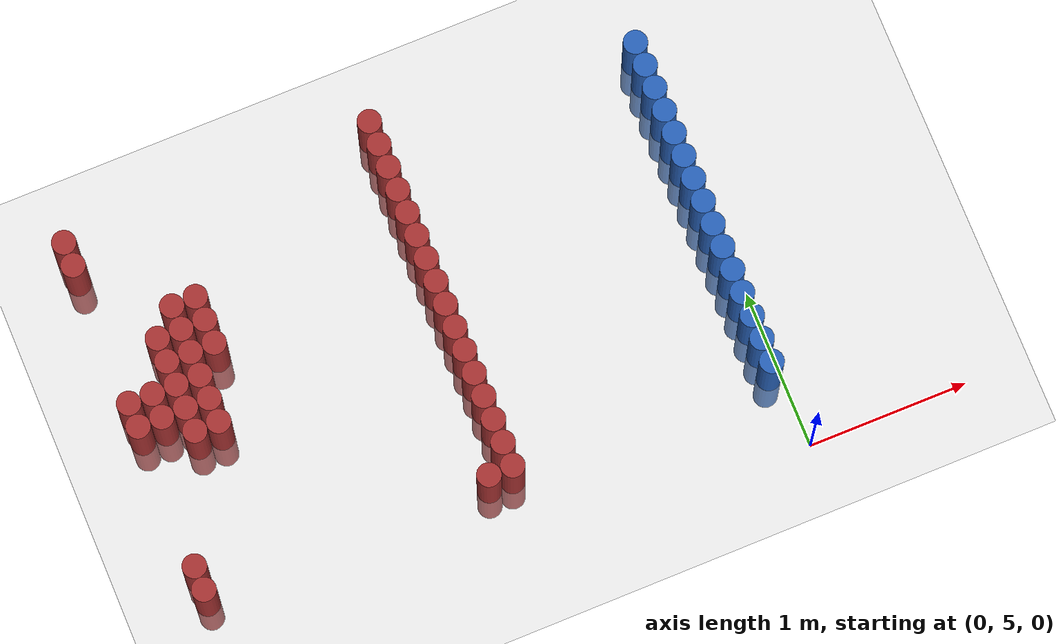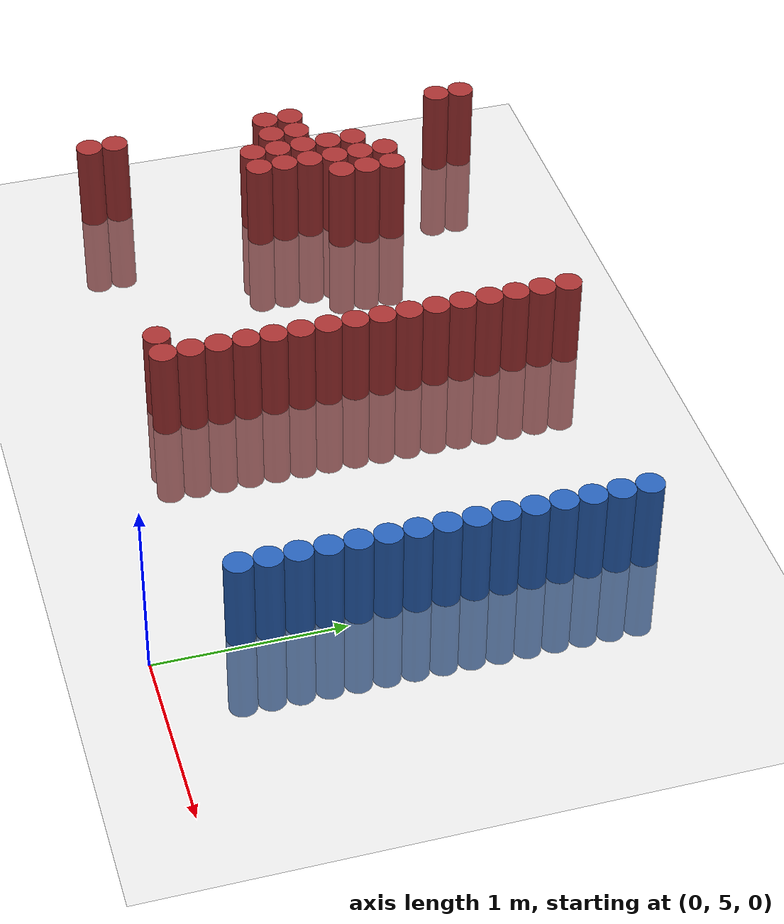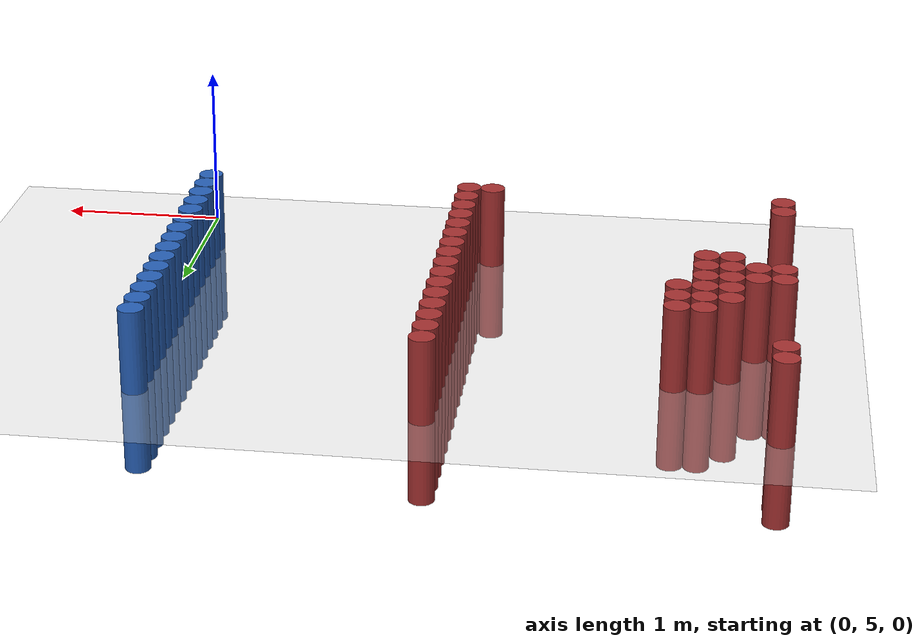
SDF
<sdf version="1.6">
 <world name="default">
  <model name="ground_plane">
   <static>1</static>
   <link name="link">
    <collision name="collision">
     <geometry><plane><normal>0 0 1</normal><size>100 100</size></plane></geometry>
     <surface><friction><ode><mu>100</mu><mu2>50</mu2></ode></friction></surface>
    </collision>
    <visual name="visual">
     <cast_shadows>0</cast_shadows>
     <geometry><plane><normal>0 0 1</normal><size>100 100</size></plane></geometry>
     <material>
      <script><uri>file://media/materials/scripts/gazebo.material</uri><name>Gazebo/Grey</name></script>
     </material>
    </visual>
   </link>
  </model>
  <model name="unit_cylinder_261">
   <static>1</static>
   <pose>-3.675000 5.475000 0.000000 0.000000 0.000000 0.000000</pose>
   <link name="link">
    <inertial>
     <mass>1</mass>
     <inertia><ixx>0.145833</ixx><ixy>0</ixy><ixz>0</ixz><iyy>0.145833</iyy><iyz>0</iyz><izz>0.125</izz></inertia>
    </inertial>
    <collision name="collision">
     <geometry><cylinder><radius>0.075000</radius><length>1</length></cylinder></geometry>
    </collision>
    <visual name="visual">
     <geometry><cylinder><radius>0.075000</radius><length>1</length></cylinder></geometry>
     <material>
      <ambient>0.648000 0.192000 0.192000 1</ambient>
      <diffuse>0.648000 0.192000 0.192000 1</diffuse>
     </material>
     <material>
      <script><name>Gazebo/Grey</name><uri>file://media/materials/scripts/gazebo.material</uri></script>
     </material>
    </visual>
   </link>
  </model>
  <model name="unit_cylinder_262">
   <static>1</static>
   <pose>-3.675000 5.625000 0.000000 0.000000 0.000000 0.000000</pose>
   <link name="link">
    <inertial>
     <mass>1</mass>
     <inertia><ixx>0.145833</ixx><ixy>0</ixy><ixz>0</ixz><iyy>0.145833</iyy><iyz>0</iyz><izz>0.125</izz></inertia>
    </inertial>
    <collision name="collision">
     <geometry><cylinder><radius>0.075000</radius><length>1</length></cylinder></geometry>
    </collision>
    <visual name="visual">
     <geometry><cylinder><radius>0.075000</radius><length>1</length></cylinder></geometry>
     <material>
      <ambient>0.648000 0.192000 0.192000 1</ambient>
      <diffuse>0.648000 0.192000 0.192000 1</diffuse>
     </material>
     <material>
      <script><name>Gazebo/Grey</name><uri>file://media/materials/scripts/gazebo.material</uri></script>
     </material>
    </visual>
   </link>
  </model>
  <model name="unit_cylinder_263">
   <static>1</static>
   <pose>-3.675000 6.525000 0.000000 0.000000 0.000000 0.000000</pose>
   <link name="link">
    <inertial>
     <mass>1</mass>
     <inertia><ixx>0.145833</ixx><ixy>0</ixy><ixz>0</ixz><iyy>0.145833</iyy><iyz>0</iyz><izz>0.125</izz></inertia>
    </inertial>
    <collision name="collision">
     <geometry><cylinder><radius>0.075000</radius><length>1</length></cylinder></geometry>
    </collision>
    <visual name="visual">
     <geometry><cylinder><radius>0.075000</radius><length>1</length></cylinder></geometry>
     <material>
      <ambient>0.648000 0.192000 0.192000 1</ambient>
      <diffuse>0.648000 0.192000 0.192000 1</diffuse>
     </material>
     <material>
      <script><name>Gazebo/Grey</name><uri>file://media/materials/scripts/gazebo.material</uri></script>
     </material>
    </visual>
   </link>
  </model>
  <model name="unit_cylinder_264">
   <static>1</static>
   <pose>-3.675000 6.675000 0.000000 0.000000 0.000000 0.000000</pose>
   <link name="link">
    <inertial>
     <mass>1</mass>
     <inertia><ixx>0.145833</ixx><ixy>0</ixy><ixz>0</ixz><iyy>0.145833</iyy><iyz>0</iyz><izz>0.125</izz></inertia>
    </inertial>
    <collision name="collision">
     <geometry><cylinder><radius>0.075000</radius><length>1</length></cylinder></geometry>
    </collision>
    <visual name="visual">
     <geometry><cylinder><radius>0.075000</radius><length>1</length></cylinder></geometry>
     <material>
      <ambient>0.648000 0.192000 0.192000 1</ambient>
      <diffuse>0.648000 0.192000 0.192000 1</diffuse>
     </material>
     <material>
      <script><name>Gazebo/Grey</name><uri>file://media/materials/scripts/gazebo.material</uri></script>
     </material>
    </visual>
   </link>
  </model>
  <model name="unit_cylinder_265">
   <static>1</static>
   <pose>-3.675000 7.575000 0.000000 0.000000 0.000000 0.000000</pose>
   <link name="link">
    <inertial>
     <mass>1</mass>
     <inertia><ixx>0.145833</ixx><ixy>0</ixy><ixz>0</ixz><iyy>0.145833</iyy><iyz>0</iyz><izz>0.125</izz></inertia>
    </inertial>
    <collision name="collision">
     <geometry><cylinder><radius>0.075000</radius><length>1</length></cylinder></geometry>
    </collision>
    <visual name="visual">
     <geometry><cylinder><radius>0.075000</radius><length>1</length></cylinder></geometry>
     <material>
      <ambient>0.648000 0.192000 0.192000 1</ambient>
      <diffuse>0.648000 0.192000 0.192000 1</diffuse>
     </material>
     <material>
      <script><name>Gazebo/Grey</name><uri>file://media/materials/scripts/gazebo.material</uri></script>
     </material>
    </visual>
   </link>
  </model>
  <model name="unit_cylinder_266">
   <static>1</static>
   <pose>-3.675000 7.725000 0.000000 0.000000 0.000000 0.000000</pose>
   <link name="link">
    <inertial>
     <mass>1</mass>
     <inertia><ixx>0.145833</ixx><ixy>0</ixy><ixz>0</ixz><iyy>0.145833</iyy><iyz>0</iyz><izz>0.125</izz></inertia>
    </inertial>
    <collision name="collision">
     <geometry><cylinder><radius>0.075000</radius><length>1</length></cylinder></geometry>
    </collision>
    <visual name="visual">
     <geometry><cylinder><radius>0.075000</radius><length>1</length></cylinder></geometry>
     <material>
      <ambient>0.648000 0.192000 0.192000 1</ambient>
      <diffuse>0.648000 0.192000 0.192000 1</diffuse>
     </material>
     <material>
      <script><name>Gazebo/Grey</name><uri>file://media/materials/scripts/gazebo.material</uri></script>
     </material>
    </visual>
   </link>
  </model>
  <model name="unit_cylinder_271">
   <static>1</static>
   <pose>-3.525000 6.525000 0.000000 0.000000 0.000000 0.000000</pose>
   <link name="link">
    <inertial>
     <mass>1</mass>
     <inertia><ixx>0.145833</ixx><ixy>0</ixy><ixz>0</ixz><iyy>0.145833</iyy><iyz>0</iyz><izz>0.125</izz></inertia>
    </inertial>
    <collision name="collision">
     <geometry><cylinder><radius>0.075000</radius><length>1</length></cylinder></geometry>
    </collision>
    <visual name="visual">
     <geometry><cylinder><radius>0.075000</radius><length>1</length></cylinder></geometry>
     <material>
      <ambient>0.648000 0.192000 0.192000 1</ambient>
      <diffuse>0.648000 0.192000 0.192000 1</diffuse>
     </material>
     <material>
      <script><name>Gazebo/Grey</name><uri>file://media/materials/scripts/gazebo.material</uri></script>
     </material>
    </visual>
   </link>
  </model>
  <model name="unit_cylinder_272">
   <static>1</static>
   <pose>-3.525000 6.675000 0.000000 0.000000 0.000000 0.000000</pose>
   <link name="link">
    <inertial>
     <mass>1</mass>
     <inertia><ixx>0.145833</ixx><ixy>0</ixy><ixz>0</ixz><iyy>0.145833</iyy><iyz>0</iyz><izz>0.125</izz></inertia>
    </inertial>
    <collision name="collision">
     <geometry><cylinder><radius>0.075000</radius><length>1</length></cylinder></geometry>
    </collision>
    <visual name="visual">
     <geometry><cylinder><radius>0.075000</radius><length>1</length></cylinder></geometry>
     <material>
      <ambient>0.648000 0.192000 0.192000 1</ambient>
      <diffuse>0.648000 0.192000 0.192000 1</diffuse>
     </material>
     <material>
      <script><name>Gazebo/Grey</name><uri>file://media/materials/scripts/gazebo.material</uri></script>
     </material>
    </visual>
   </link>
  </model>
  <model name="unit_cylinder_278">
   <static>1</static>
   <pose>-3.375000 6.375000 0.000000 0.000000 0.000000 0.000000</pose>
   <link name="link">
    <inertial>
     <mass>1</mass>
     <inertia><ixx>0.145833</ixx><ixy>0</ixy><ixz>0</ixz><iyy>0.145833</iyy><iyz>0</iyz><izz>0.125</izz></inertia>
    </inertial>
    <collision name="collision">
     <geometry><cylinder><radius>0.075000</radius><length>1</length></cylinder></geometry>
    </collision>
    <visual name="visual">
     <geometry><cylinder><radius>0.075000</radius><length>1</length></cylinder></geometry>
     <material>
      <ambient>0.648000 0.192000 0.192000 1</ambient>
      <diffuse>0.648000 0.192000 0.192000 1</diffuse>
     </material>
     <material>
      <script><name>Gazebo/Grey</name><uri>file://media/materials/scripts/gazebo.material</uri></script>
     </material>
    </visual>
   </link>
  </model>
  <model name="unit_cylinder_279">
   <static>1</static>
   <pose>-3.375000 6.525000 0.000000 0.000000 0.000000 0.000000</pose>
   <link name="link">
    <inertial>
     <mass>1</mass>
     <inertia><ixx>0.145833</ixx><ixy>0</ixy><ixz>0</ixz><iyy>0.145833</iyy><iyz>0</iyz><izz>0.125</izz></inertia>
    </inertial>
    <collision name="collision">
     <geometry><cylinder><radius>0.075000</radius><length>1</length></cylinder></geometry>
    </collision>
    <visual name="visual">
     <geometry><cylinder><radius>0.075000</radius><length>1</length></cylinder></geometry>
     <material>
      <ambient>0.648000 0.192000 0.192000 1</ambient>
      <diffuse>0.648000 0.192000 0.192000 1</diffuse>
     </material>
     <material>
      <script><name>Gazebo/Grey</name><uri>file://media/materials/scripts/gazebo.material</uri></script>
     </material>
    </visual>
   </link>
  </model>
  <model name="unit_cylinder_280">
   <static>1</static>
   <pose>-3.375000 6.675000 0.000000 0.000000 0.000000 0.000000</pose>
   <link name="link">
    <inertial>
     <mass>1</mass>
     <inertia><ixx>0.145833</ixx><ixy>0</ixy><ixz>0</ixz><iyy>0.145833</iyy><iyz>0</iyz><izz>0.125</izz></inertia>
    </inertial>
    <collision name="collision">
     <geometry><cylinder><radius>0.075000</radius><length>1</length></cylinder></geometry>
    </collision>
    <visual name="visual">
     <geometry><cylinder><radius>0.075000</radius><length>1</length></cylinder></geometry>
     <material>
      <ambient>0.648000 0.192000 0.192000 1</ambient>
      <diffuse>0.648000 0.192000 0.192000 1</diffuse>
     </material>
     <material>
      <script><name>Gazebo/Grey</name><uri>file://media/materials/scripts/gazebo.material</uri></script>
     </material>
    </visual>
   </link>
  </model>
  <model name="unit_cylinder_281">
   <static>1</static>
   <pose>-3.375000 6.825000 0.000000 0.000000 0.000000 0.000000</pose>
   <link name="link">
    <inertial>
     <mass>1</mass>
     <inertia><ixx>0.145833</ixx><ixy>0</ixy><ixz>0</ixz><iyy>0.145833</iyy><iyz>0</iyz><izz>0.125</izz></inertia>
    </inertial>
    <collision name="collision">
     <geometry><cylinder><radius>0.075000</radius><length>1</length></cylinder></geometry>
    </collision>
    <visual name="visual">
     <geometry><cylinder><radius>0.075000</radius><length>1</length></cylinder></geometry>
     <material>
      <ambient>0.648000 0.192000 0.192000 1</ambient>
      <diffuse>0.648000 0.192000 0.192000 1</diffuse>
     </material>
     <material>
      <script><name>Gazebo/Grey</name><uri>file://media/materials/scripts/gazebo.material</uri></script>
     </material>
    </visual>
   </link>
  </model>
  <model name="unit_cylinder_282">
   <static>1</static>
   <pose>-3.375000 6.975000 0.000000 0.000000 0.000000 0.000000</pose>
   <link name="link">
    <inertial>
     <mass>1</mass>
     <inertia><ixx>0.145833</ixx><ixy>0</ixy><ixz>0</ixz><iyy>0.145833</iyy><iyz>0</iyz><izz>0.125</izz></inertia>
    </inertial>
    <collision name="collision">
     <geometry><cylinder><radius>0.075000</radius><length>1</length></cylinder></geometry>
    </collision>
    <visual name="visual">
     <geometry><cylinder><radius>0.075000</radius><length>1</length></cylinder></geometry>
     <material>
      <ambient>0.648000 0.192000 0.192000 1</ambient>
      <diffuse>0.648000 0.192000 0.192000 1</diffuse>
     </material>
     <material>
      <script><name>Gazebo/Grey</name><uri>file://media/materials/scripts/gazebo.material</uri></script>
     </material>
    </visual>
   </link>
  </model>
  <model name="unit_cylinder_287">
   <static>1</static>
   <pose>-3.225000 6.375000 0.000000 0.000000 0.000000 0.000000</pose>
   <link name="link">
    <inertial>
     <mass>1</mass>
     <inertia><ixx>0.145833</ixx><ixy>0</ixy><ixz>0</ixz><iyy>0.145833</iyy><iyz>0</iyz><izz>0.125</izz></inertia>
    </inertial>
    <collision name="collision">
     <geometry><cylinder><radius>0.075000</radius><length>1</length></cylinder></geometry>
    </collision>
    <visual name="visual">
     <geometry><cylinder><radius>0.075000</radius><length>1</length></cylinder></geometry>
     <material>
      <ambient>0.648000 0.192000 0.192000 1</ambient>
      <diffuse>0.648000 0.192000 0.192000 1</diffuse>
     </material>
     <material>
      <script><name>Gazebo/Grey</name><uri>file://media/materials/scripts/gazebo.material</uri></script>
     </material>
    </visual>
   </link>
  </model>
  <model name="unit_cylinder_288">
   <static>1</static>
   <pose>-3.225000 6.525000 0.000000 0.000000 0.000000 0.000000</pose>
   <link name="link">
    <inertial>
     <mass>1</mass>
     <inertia><ixx>0.145833</ixx><ixy>0</ixy><ixz>0</ixz><iyy>0.145833</iyy><iyz>0</iyz><izz>0.125</izz></inertia>
    </inertial>
    <collision name="collision">
     <geometry><cylinder><radius>0.075000</radius><length>1</length></cylinder></geometry>
    </collision>
    <visual name="visual">
     <geometry><cylinder><radius>0.075000</radius><length>1</length></cylinder></geometry>
     <material>
      <ambient>0.648000 0.192000 0.192000 1</ambient>
      <diffuse>0.648000 0.192000 0.192000 1</diffuse>
     </material>
     <material>
      <script><name>Gazebo/Grey</name><uri>file://media/materials/scripts/gazebo.material</uri></script>
     </material>
    </visual>
   </link>
  </model>
  <model name="unit_cylinder_289">
   <static>1</static>
   <pose>-3.225000 6.675000 0.000000 0.000000 0.000000 0.000000</pose>
   <link name="link">
    <inertial>
     <mass>1</mass>
     <inertia><ixx>0.145833</ixx><ixy>0</ixy><ixz>0</ixz><iyy>0.145833</iyy><iyz>0</iyz><izz>0.125</izz></inertia>
    </inertial>
    <collision name="collision">
     <geometry><cylinder><radius>0.075000</radius><length>1</length></cylinder></geometry>
    </collision>
    <visual name="visual">
     <geometry><cylinder><radius>0.075000</radius><length>1</length></cylinder></geometry>
     <material>
      <ambient>0.648000 0.192000 0.192000 1</ambient>
      <diffuse>0.648000 0.192000 0.192000 1</diffuse>
     </material>
     <material>
      <script><name>Gazebo/Grey</name><uri>file://media/materials/scripts/gazebo.material</uri></script>
     </material>
    </visual>
   </link>
  </model>
  <model name="unit_cylinder_290">
   <static>1</static>
   <pose>-3.225000 6.825000 0.000000 0.000000 0.000000 0.000000</pose>
   <link name="link">
    <inertial>
     <mass>1</mass>
     <inertia><ixx>0.145833</ixx><ixy>0</ixy><ixz>0</ixz><iyy>0.145833</iyy><iyz>0</iyz><izz>0.125</izz></inertia>
    </inertial>
    <collision name="collision">
     <geometry><cylinder><radius>0.075000</radius><length>1</length></cylinder></geometry>
    </collision>
    <visual name="visual">
     <geometry><cylinder><radius>0.075000</radius><length>1</length></cylinder></geometry>
     <material>
      <ambient>0.648000 0.192000 0.192000 1</ambient>
      <diffuse>0.648000 0.192000 0.192000 1</diffuse>
     </material>
     <material>
      <script><name>Gazebo/Grey</name><uri>file://media/materials/scripts/gazebo.material</uri></script>
     </material>
    </visual>
   </link>
  </model>
  <model name="unit_cylinder_291">
   <static>1</static>
   <pose>-3.225000 6.975000 0.000000 0.000000 0.000000 0.000000</pose>
   <link name="link">
    <inertial>
     <mass>1</mass>
     <inertia><ixx>0.145833</ixx><ixy>0</ixy><ixz>0</ixz><iyy>0.145833</iyy><iyz>0</iyz><izz>0.125</izz></inertia>
    </inertial>
    <collision name="collision">
     <geometry><cylinder><radius>0.075000</radius><length>1</length></cylinder></geometry>
    </collision>
    <visual name="visual">
     <geometry><cylinder><radius>0.075000</radius><length>1</length></cylinder></geometry>
     <material>
      <ambient>0.648000 0.192000 0.192000 1</ambient>
      <diffuse>0.648000 0.192000 0.192000 1</diffuse>
     </material>
     <material>
      <script><name>Gazebo/Grey</name><uri>file://media/materials/scripts/gazebo.material</uri></script>
     </material>
    </visual>
   </link>
  </model>
  <model name="unit_cylinder_292">
   <static>1</static>
   <pose>-3.225000 7.125000 0.000000 0.000000 0.000000 0.000000</pose>
   <link name="link">
    <inertial>
     <mass>1</mass>
     <inertia><ixx>0.145833</ixx><ixy>0</ixy><ixz>0</ixz><iyy>0.145833</iyy><iyz>0</iyz><izz>0.125</izz></inertia>
    </inertial>
    <collision name="collision">
     <geometry><cylinder><radius>0.075000</radius><length>1</length></cylinder></geometry>
    </collision>
    <visual name="visual">
     <geometry><cylinder><radius>0.075000</radius><length>1</length></cylinder></geometry>
     <material>
      <ambient>0.648000 0.192000 0.192000 1</ambient>
      <diffuse>0.648000 0.192000 0.192000 1</diffuse>
     </material>
     <material>
      <script><name>Gazebo/Grey</name><uri>file://media/materials/scripts/gazebo.material</uri></script>
     </material>
    </visual>
   </link>
  </model>
  <model name="unit_cylinder_293">
   <static>1</static>
   <pose>-3.075000 6.825000 0.000000 0.000000 0.000000 0.000000</pose>
   <link name="link">
    <inertial>
     <mass>1</mass>
     <inertia><ixx>0.145833</ixx><ixy>0</ixy><ixz>0</ixz><iyy>0.145833</iyy><iyz>0</iyz><izz>0.125</izz></inertia>
    </inertial>
    <collision name="collision">
     <geometry><cylinder><radius>0.075000</radius><length>1</length></cylinder></geometry>
    </collision>
    <visual name="visual">
     <geometry><cylinder><radius>0.075000</radius><length>1</length></cylinder></geometry>
     <material>
      <ambient>0.648000 0.192000 0.192000 1</ambient>
      <diffuse>0.648000 0.192000 0.192000 1</diffuse>
     </material>
     <material>
      <script><name>Gazebo/Grey</name><uri>file://media/materials/scripts/gazebo.material</uri></script>
     </material>
    </visual>
   </link>
  </model>
  <model name="unit_cylinder_294">
   <static>1</static>
   <pose>-3.075000 6.975000 0.000000 0.000000 0.000000 0.000000</pose>
   <link name="link">
    <inertial>
     <mass>1</mass>
     <inertia><ixx>0.145833</ixx><ixy>0</ixy><ixz>0</ixz><iyy>0.145833</iyy><iyz>0</iyz><izz>0.125</izz></inertia>
    </inertial>
    <collision name="collision">
     <geometry><cylinder><radius>0.075000</radius><length>1</length></cylinder></geometry>
    </collision>
    <visual name="visual">
     <geometry><cylinder><radius>0.075000</radius><length>1</length></cylinder></geometry>
     <material>
      <ambient>0.648000 0.192000 0.192000 1</ambient>
      <diffuse>0.648000 0.192000 0.192000 1</diffuse>
     </material>
     <material>
      <script><name>Gazebo/Grey</name><uri>file://media/materials/scripts/gazebo.material</uri></script>
     </material>
    </visual>
   </link>
  </model>
  <model name="unit_cylinder_295">
   <static>1</static>
   <pose>-3.075000 7.125000 0.000000 0.000000 0.000000 0.000000</pose>
   <link name="link">
    <inertial>
     <mass>1</mass>
     <inertia><ixx>0.145833</ixx><ixy>0</ixy><ixz>0</ixz><iyy>0.145833</iyy><iyz>0</iyz><izz>0.125</izz></inertia>
    </inertial>
    <collision name="collision">
     <geometry><cylinder><radius>0.075000</radius><length>1</length></cylinder></geometry>
    </collision>
    <visual name="visual">
     <geometry><cylinder><radius>0.075000</radius><length>1</length></cylinder></geometry>
     <material>
      <ambient>0.648000 0.192000 0.192000 1</ambient>
      <diffuse>0.648000 0.192000 0.192000 1</diffuse>
     </material>
     <material>
      <script><name>Gazebo/Grey</name><uri>file://media/materials/scripts/gazebo.material</uri></script>
     </material>
    </visual>
   </link>
  </model>
  <model name="unit_cylinder_306">
   <static>1</static>
   <pose>-1.875000 5.475000 0.000000 0.000000 0.000000 0.000000</pose>
   <link name="link">
    <inertial>
     <mass>1</mass>
     <inertia><ixx>0.145833</ixx><ixy>0</ixy><ixz>0</ixz><iyy>0.145833</iyy><iyz>0</iyz><izz>0.125</izz></inertia>
    </inertial>
    <collision name="collision">
     <geometry><cylinder><radius>0.075000</radius><length>1</length></cylinder></geometry>
    </collision>
    <visual name="visual">
     <geometry><cylinder><radius>0.075000</radius><length>1</length></cylinder></geometry>
     <material>
      <ambient>0.648000 0.192000 0.192000 1</ambient>
      <diffuse>0.648000 0.192000 0.192000 1</diffuse>
     </material>
     <material>
      <script><name>Gazebo/Grey</name><uri>file://media/materials/scripts/gazebo.material</uri></script>
     </material>
    </visual>
   </link>
  </model>
  <model name="unit_cylinder_310">
   <static>1</static>
   <pose>-1.725000 5.475000 0.000000 0.000000 0.000000 0.000000</pose>
   <link name="link">
    <inertial>
     <mass>1</mass>
     <inertia><ixx>0.145833</ixx><ixy>0</ixy><ixz>0</ixz><iyy>0.145833</iyy><iyz>0</iyz><izz>0.125</izz></inertia>
    </inertial>
    <collision name="collision">
     <geometry><cylinder><radius>0.075000</radius><length>1</length></cylinder></geometry>
    </collision>
    <visual name="visual">
     <geometry><cylinder><radius>0.075000</radius><length>1</length></cylinder></geometry>
     <material>
      <ambient>0.648000 0.192000 0.192000 1</ambient>
      <diffuse>0.648000 0.192000 0.192000 1</diffuse>
     </material>
     <material>
      <script><name>Gazebo/Grey</name><uri>file://media/materials/scripts/gazebo.material</uri></script>
     </material>
    </visual>
   </link>
  </model>
  <model name="unit_cylinder_311">
   <static>1</static>
   <pose>-1.725000 5.625000 0.000000 0.000000 0.000000 0.000000</pose>
   <link name="link">
    <inertial>
     <mass>1</mass>
     <inertia><ixx>0.145833</ixx><ixy>0</ixy><ixz>0</ixz><iyy>0.145833</iyy><iyz>0</iyz><izz>0.125</izz></inertia>
    </inertial>
    <collision name="collision">
     <geometry><cylinder><radius>0.075000</radius><length>1</length></cylinder></geometry>
    </collision>
    <visual name="visual">
     <geometry><cylinder><radius>0.075000</radius><length>1</length></cylinder></geometry>
     <material>
      <ambient>0.648000 0.192000 0.192000 1</ambient>
      <diffuse>0.648000 0.192000 0.192000 1</diffuse>
     </material>
     <material>
      <script><name>Gazebo/Grey</name><uri>file://media/materials/scripts/gazebo.material</uri></script>
     </material>
    </visual>
   </link>
  </model>
  <model name="unit_cylinder_312">
   <static>1</static>
   <pose>-1.725000 5.775000 0.000000 0.000000 0.000000 0.000000</pose>
   <link name="link">
    <inertial>
     <mass>1</mass>
     <inertia><ixx>0.145833</ixx><ixy>0</ixy><ixz>0</ixz><iyy>0.145833</iyy><iyz>0</iyz><izz>0.125</izz></inertia>
    </inertial>
    <collision name="collision">
     <geometry><cylinder><radius>0.075000</radius><length>1</length></cylinder></geometry>
    </collision>
    <visual name="visual">
     <geometry><cylinder><radius>0.075000</radius><length>1</length></cylinder></geometry>
     <material>
      <ambient>0.648000 0.192000 0.192000 1</ambient>
      <diffuse>0.648000 0.192000 0.192000 1</diffuse>
     </material>
     <material>
      <script><name>Gazebo/Grey</name><uri>file://media/materials/scripts/gazebo.material</uri></script>
     </material>
    </visual>
   </link>
  </model>
  <model name="unit_cylinder_313">
   <static>1</static>
   <pose>-1.725000 5.925000 0.000000 0.000000 0.000000 0.000000</pose>
   <link name="link">
    <inertial>
     <mass>1</mass>
     <inertia><ixx>0.145833</ixx><ixy>0</ixy><ixz>0</ixz><iyy>0.145833</iyy><iyz>0</iyz><izz>0.125</izz></inertia>
    </inertial>
    <collision name="collision">
     <geometry><cylinder><radius>0.075000</radius><length>1</length></cylinder></geometry>
    </collision>
    <visual name="visual">
     <geometry><cylinder><radius>0.075000</radius><length>1</length></cylinder></geometry>
     <material>
      <ambient>0.648000 0.192000 0.192000 1</ambient>
      <diffuse>0.648000 0.192000 0.192000 1</diffuse>
     </material>
     <material>
      <script><name>Gazebo/Grey</name><uri>file://media/materials/scripts/gazebo.material</uri></script>
     </material>
    </visual>
   </link>
  </model>
  <model name="unit_cylinder_314">
   <static>1</static>
   <pose>-1.725000 6.075000 0.000000 0.000000 0.000000 0.000000</pose>
   <link name="link">
    <inertial>
     <mass>1</mass>
     <inertia><ixx>0.145833</ixx><ixy>0</ixy><ixz>0</ixz><iyy>0.145833</iyy><iyz>0</iyz><izz>0.125</izz></inertia>
    </inertial>
    <collision name="collision">
     <geometry><cylinder><radius>0.075000</radius><length>1</length></cylinder></geometry>
    </collision>
    <visual name="visual">
     <geometry><cylinder><radius>0.075000</radius><length>1</length></cylinder></geometry>
     <material>
      <ambient>0.648000 0.192000 0.192000 1</ambient>
      <diffuse>0.648000 0.192000 0.192000 1</diffuse>
     </material>
     <material>
      <script><name>Gazebo/Grey</name><uri>file://media/materials/scripts/gazebo.material</uri></script>
     </material>
    </visual>
   </link>
  </model>
  <model name="unit_cylinder_315">
   <static>1</static>
   <pose>-1.725000 6.225000 0.000000 0.000000 0.000000 0.000000</pose>
   <link name="link">
    <inertial>
     <mass>1</mass>
     <inertia><ixx>0.145833</ixx><ixy>0</ixy><ixz>0</ixz><iyy>0.145833</iyy><iyz>0</iyz><izz>0.125</izz></inertia>
    </inertial>
    <collision name="collision">
     <geometry><cylinder><radius>0.075000</radius><length>1</length></cylinder></geometry>
    </collision>
    <visual name="visual">
     <geometry><cylinder><radius>0.075000</radius><length>1</length></cylinder></geometry>
     <material>
      <ambient>0.648000 0.192000 0.192000 1</ambient>
      <diffuse>0.648000 0.192000 0.192000 1</diffuse>
     </material>
     <material>
      <script><name>Gazebo/Grey</name><uri>file://media/materials/scripts/gazebo.material</uri></script>
     </material>
    </visual>
   </link>
  </model>
  <model name="unit_cylinder_316">
   <static>1</static>
   <pose>-1.725000 6.375000 0.000000 0.000000 0.000000 0.000000</pose>
   <link name="link">
    <inertial>
     <mass>1</mass>
     <inertia><ixx>0.145833</ixx><ixy>0</ixy><ixz>0</ixz><iyy>0.145833</iyy><iyz>0</iyz><izz>0.125</izz></inertia>
    </inertial>
    <collision name="collision">
     <geometry><cylinder><radius>0.075000</radius><length>1</length></cylinder></geometry>
    </collision>
    <visual name="visual">
     <geometry><cylinder><radius>0.075000</radius><length>1</length></cylinder></geometry>
     <material>
      <ambient>0.648000 0.192000 0.192000 1</ambient>
      <diffuse>0.648000 0.192000 0.192000 1</diffuse>
     </material>
     <material>
      <script><name>Gazebo/Grey</name><uri>file://media/materials/scripts/gazebo.material</uri></script>
     </material>
    </visual>
   </link>
  </model>
  <model name="unit_cylinder_317">
   <static>1</static>
   <pose>-1.725000 6.525000 0.000000 0.000000 0.000000 0.000000</pose>
   <link name="link">
    <inertial>
     <mass>1</mass>
     <inertia><ixx>0.145833</ixx><ixy>0</ixy><ixz>0</ixz><iyy>0.145833</iyy><iyz>0</iyz><izz>0.125</izz></inertia>
    </inertial>
    <collision name="collision">
     <geometry><cylinder><radius>0.075000</radius><length>1</length></cylinder></geometry>
    </collision>
    <visual name="visual">
     <geometry><cylinder><radius>0.075000</radius><length>1</length></cylinder></geometry>
     <material>
      <ambient>0.648000 0.192000 0.192000 1</ambient>
      <diffuse>0.648000 0.192000 0.192000 1</diffuse>
     </material>
     <material>
      <script><name>Gazebo/Grey</name><uri>file://media/materials/scripts/gazebo.material</uri></script>
     </material>
    </visual>
   </link>
  </model>
  <model name="unit_cylinder_318">
   <static>1</static>
   <pose>-1.725000 6.675000 0.000000 0.000000 0.000000 0.000000</pose>
   <link name="link">
    <inertial>
     <mass>1</mass>
     <inertia><ixx>0.145833</ixx><ixy>0</ixy><ixz>0</ixz><iyy>0.145833</iyy><iyz>0</iyz><izz>0.125</izz></inertia>
    </inertial>
    <collision name="collision">
     <geometry><cylinder><radius>0.075000</radius><length>1</length></cylinder></geometry>
    </collision>
    <visual name="visual">
     <geometry><cylinder><radius>0.075000</radius><length>1</length></cylinder></geometry>
     <material>
      <ambient>0.648000 0.192000 0.192000 1</ambient>
      <diffuse>0.648000 0.192000 0.192000 1</diffuse>
     </material>
     <material>
      <script><name>Gazebo/Grey</name><uri>file://media/materials/scripts/gazebo.material</uri></script>
     </material>
    </visual>
   </link>
  </model>
  <model name="unit_cylinder_319">
   <static>1</static>
   <pose>-1.725000 6.825000 0.000000 0.000000 0.000000 0.000000</pose>
   <link name="link">
    <inertial>
     <mass>1</mass>
     <inertia><ixx>0.145833</ixx><ixy>0</ixy><ixz>0</ixz><iyy>0.145833</iyy><iyz>0</iyz><izz>0.125</izz></inertia>
    </inertial>
    <collision name="collision">
     <geometry><cylinder><radius>0.075000</radius><length>1</length></cylinder></geometry>
    </collision>
    <visual name="visual">
     <geometry><cylinder><radius>0.075000</radius><length>1</length></cylinder></geometry>
     <material>
      <ambient>0.648000 0.192000 0.192000 1</ambient>
      <diffuse>0.648000 0.192000 0.192000 1</diffuse>
     </material>
     <material>
      <script><name>Gazebo/Grey</name><uri>file://media/materials/scripts/gazebo.material</uri></script>
     </material>
    </visual>
   </link>
  </model>
  <model name="unit_cylinder_320">
   <static>1</static>
   <pose>-1.725000 6.975000 0.000000 0.000000 0.000000 0.000000</pose>
   <link name="link">
    <inertial>
     <mass>1</mass>
     <inertia><ixx>0.145833</ixx><ixy>0</ixy><ixz>0</ixz><iyy>0.145833</iyy><iyz>0</iyz><izz>0.125</izz></inertia>
    </inertial>
    <collision name="collision">
     <geometry><cylinder><radius>0.075000</radius><length>1</length></cylinder></geometry>
    </collision>
    <visual name="visual">
     <geometry><cylinder><radius>0.075000</radius><length>1</length></cylinder></geometry>
     <material>
      <ambient>0.648000 0.192000 0.192000 1</ambient>
      <diffuse>0.648000 0.192000 0.192000 1</diffuse>
     </material>
     <material>
      <script><name>Gazebo/Grey</name><uri>file://media/materials/scripts/gazebo.material</uri></script>
     </material>
    </visual>
   </link>
  </model>
  <model name="unit_cylinder_321">
   <static>1</static>
   <pose>-1.725000 7.125000 0.000000 0.000000 0.000000 0.000000</pose>
   <link name="link">
    <inertial>
     <mass>1</mass>
     <inertia><ixx>0.145833</ixx><ixy>0</ixy><ixz>0</ixz><iyy>0.145833</iyy><iyz>0</iyz><izz>0.125</izz></inertia>
    </inertial>
    <collision name="collision">
     <geometry><cylinder><radius>0.075000</radius><length>1</length></cylinder></geometry>
    </collision>
    <visual name="visual">
     <geometry><cylinder><radius>0.075000</radius><length>1</length></cylinder></geometry>
     <material>
      <ambient>0.648000 0.192000 0.192000 1</ambient>
      <diffuse>0.648000 0.192000 0.192000 1</diffuse>
     </material>
     <material>
      <script><name>Gazebo/Grey</name><uri>file://media/materials/scripts/gazebo.material</uri></script>
     </material>
    </visual>
   </link>
  </model>
  <model name="unit_cylinder_322">
   <static>1</static>
   <pose>-1.725000 7.275000 0.000000 0.000000 0.000000 0.000000</pose>
   <link name="link">
    <inertial>
     <mass>1</mass>
     <inertia><ixx>0.145833</ixx><ixy>0</ixy><ixz>0</ixz><iyy>0.145833</iyy><iyz>0</iyz><izz>0.125</izz></inertia>
    </inertial>
    <collision name="collision">
     <geometry><cylinder><radius>0.075000</radius><length>1</length></cylinder></geometry>
    </collision>
    <visual name="visual">
     <geometry><cylinder><radius>0.075000</radius><length>1</length></cylinder></geometry>
     <material>
      <ambient>0.648000 0.192000 0.192000 1</ambient>
      <diffuse>0.648000 0.192000 0.192000 1</diffuse>
     </material>
     <material>
      <script><name>Gazebo/Grey</name><uri>file://media/materials/scripts/gazebo.material</uri></script>
     </material>
    </visual>
   </link>
  </model>
  <model name="unit_cylinder_323">
   <static>1</static>
   <pose>-1.725000 7.425000 0.000000 0.000000 0.000000 0.000000</pose>
   <link name="link">
    <inertial>
     <mass>1</mass>
     <inertia><ixx>0.145833</ixx><ixy>0</ixy><ixz>0</ixz><iyy>0.145833</iyy><iyz>0</iyz><izz>0.125</izz></inertia>
    </inertial>
    <collision name="collision">
     <geometry><cylinder><radius>0.075000</radius><length>1</length></cylinder></geometry>
    </collision>
    <visual name="visual">
     <geometry><cylinder><radius>0.075000</radius><length>1</length></cylinder></geometry>
     <material>
      <ambient>0.648000 0.192000 0.192000 1</ambient>
      <diffuse>0.648000 0.192000 0.192000 1</diffuse>
     </material>
     <material>
      <script><name>Gazebo/Grey</name><uri>file://media/materials/scripts/gazebo.material</uri></script>
     </material>
    </visual>
   </link>
  </model>
  <model name="unit_cylinder_324">
   <static>1</static>
   <pose>-1.725000 7.575000 0.000000 0.000000 0.000000 0.000000</pose>
   <link name="link">
    <inertial>
     <mass>1</mass>
     <inertia><ixx>0.145833</ixx><ixy>0</ixy><ixz>0</ixz><iyy>0.145833</iyy><iyz>0</iyz><izz>0.125</izz></inertia>
    </inertial>
    <collision name="collision">
     <geometry><cylinder><radius>0.075000</radius><length>1</length></cylinder></geometry>
    </collision>
    <visual name="visual">
     <geometry><cylinder><radius>0.075000</radius><length>1</length></cylinder></geometry>
     <material>
      <ambient>0.648000 0.192000 0.192000 1</ambient>
      <diffuse>0.648000 0.192000 0.192000 1</diffuse>
     </material>
     <material>
      <script><name>Gazebo/Grey</name><uri>file://media/materials/scripts/gazebo.material</uri></script>
     </material>
    </visual>
   </link>
  </model>
  <model name="unit_cylinder_325">
   <static>1</static>
   <pose>-1.725000 7.725000 0.000000 0.000000 0.000000 0.000000</pose>
   <link name="link">
    <inertial>
     <mass>1</mass>
     <inertia><ixx>0.145833</ixx><ixy>0</ixy><ixz>0</ixz><iyy>0.145833</iyy><iyz>0</iyz><izz>0.125</izz></inertia>
    </inertial>
    <collision name="collision">
     <geometry><cylinder><radius>0.075000</radius><length>1</length></cylinder></geometry>
    </collision>
    <visual name="visual">
     <geometry><cylinder><radius>0.075000</radius><length>1</length></cylinder></geometry>
     <material>
      <ambient>0.648000 0.192000 0.192000 1</ambient>
      <diffuse>0.648000 0.192000 0.192000 1</diffuse>
     </material>
     <material>
      <script><name>Gazebo/Grey</name><uri>file://media/materials/scripts/gazebo.material</uri></script>
     </material>
    </visual>
   </link>
  </model>
  <model name="unit_cylinder_354">
   <static>1</static>
   <pose>-0.075000 5.475000 0.000000 0.000000 0.000000 0.000000</pose>
   <link name="link">
    <inertial>
     <mass>1</mass>
     <inertia><ixx>0.145833</ixx><ixy>0</ixy><ixz>0</ixz><iyy>0.145833</iyy><iyz>0</iyz><izz>0.125</izz></inertia>
    </inertial>
    <collision name="collision">
     <geometry><cylinder><radius>0.075000</radius><length>1</length></cylinder></geometry>
    </collision>
    <visual name="visual">
     <geometry><cylinder><radius>0.075000</radius><length>1</length></cylinder></geometry>
     <material>
      <ambient>0.152000 0.379000 0.720000 1</ambient>
      <diffuse>0.152000 0.379000 0.720000 1</diffuse>
     </material>
     <material>
      <script><name>Gazebo/Grey</name><uri>file://media/materials/scripts/gazebo.material</uri></script>
     </material>
    </visual>
   </link>
  </model>
  <model name="unit_cylinder_355">
   <static>1</static>
   <pose>-0.075000 5.625000 0.000000 0.000000 0.000000 0.000000</pose>
   <link name="link">
    <inertial>
     <mass>1</mass>
     <inertia><ixx>0.145833</ixx><ixy>0</ixy><ixz>0</ixz><iyy>0.145833</iyy><iyz>0</iyz><izz>0.125</izz></inertia>
    </inertial>
    <collision name="collision">
     <geometry><cylinder><radius>0.075000</radius><length>1</length></cylinder></geometry>
    </collision>
    <visual name="visual">
     <geometry><cylinder><radius>0.075000</radius><length>1</length></cylinder></geometry>
     <material>
      <ambient>0.152000 0.379000 0.720000 1</ambient>
      <diffuse>0.152000 0.379000 0.720000 1</diffuse>
     </material>
     <material>
      <script><name>Gazebo/Grey</name><uri>file://media/materials/scripts/gazebo.material</uri></script>
     </material>
    </visual>
   </link>
  </model>
  <model name="unit_cylinder_356">
   <static>1</static>
   <pose>-0.075000 5.775000 0.000000 0.000000 0.000000 0.000000</pose>
   <link name="link">
    <inertial>
     <mass>1</mass>
     <inertia><ixx>0.145833</ixx><ixy>0</ixy><ixz>0</ixz><iyy>0.145833</iyy><iyz>0</iyz><izz>0.125</izz></inertia>
    </inertial>
    <collision name="collision">
     <geometry><cylinder><radius>0.075000</radius><length>1</length></cylinder></geometry>
    </collision>
    <visual name="visual">
     <geometry><cylinder><radius>0.075000</radius><length>1</length></cylinder></geometry>
     <material>
      <ambient>0.152000 0.379000 0.720000 1</ambient>
      <diffuse>0.152000 0.379000 0.720000 1</diffuse>
     </material>
     <material>
      <script><name>Gazebo/Grey</name><uri>file://media/materials/scripts/gazebo.material</uri></script>
     </material>
    </visual>
   </link>
  </model>
  <model name="unit_cylinder_357">
   <static>1</static>
   <pose>-0.075000 5.925000 0.000000 0.000000 0.000000 0.000000</pose>
   <link name="link">
    <inertial>
     <mass>1</mass>
     <inertia><ixx>0.145833</ixx><ixy>0</ixy><ixz>0</ixz><iyy>0.145833</iyy><iyz>0</iyz><izz>0.125</izz></inertia>
    </inertial>
    <collision name="collision">
     <geometry><cylinder><radius>0.075000</radius><length>1</length></cylinder></geometry>
    </collision>
    <visual name="visual">
     <geometry><cylinder><radius>0.075000</radius><length>1</length></cylinder></geometry>
     <material>
      <ambient>0.152000 0.379000 0.720000 1</ambient>
      <diffuse>0.152000 0.379000 0.720000 1</diffuse>
     </material>
     <material>
      <script><name>Gazebo/Grey</name><uri>file://media/materials/scripts/gazebo.material</uri></script>
     </material>
    </visual>
   </link>
  </model>
  <model name="unit_cylinder_358">
   <static>1</static>
   <pose>-0.075000 6.075000 0.000000 0.000000 0.000000 0.000000</pose>
   <link name="link">
    <inertial>
     <mass>1</mass>
     <inertia><ixx>0.145833</ixx><ixy>0</ixy><ixz>0</ixz><iyy>0.145833</iyy><iyz>0</iyz><izz>0.125</izz></inertia>
    </inertial>
    <collision name="collision">
     <geometry><cylinder><radius>0.075000</radius><length>1</length></cylinder></geometry>
    </collision>
    <visual name="visual">
     <geometry><cylinder><radius>0.075000</radius><length>1</length></cylinder></geometry>
     <material>
      <ambient>0.152000 0.379000 0.720000 1</ambient>
      <diffuse>0.152000 0.379000 0.720000 1</diffuse>
     </material>
     <material>
      <script><name>Gazebo/Grey</name><uri>file://media/materials/scripts/gazebo.material</uri></script>
     </material>
    </visual>
   </link>
  </model>
  <model name="unit_cylinder_359">
   <static>1</static>
   <pose>-0.075000 6.225000 0.000000 0.000000 0.000000 0.000000</pose>
   <link name="link">
    <inertial>
     <mass>1</mass>
     <inertia><ixx>0.145833</ixx><ixy>0</ixy><ixz>0</ixz><iyy>0.145833</iyy><iyz>0</iyz><izz>0.125</izz></inertia>
    </inertial>
    <collision name="collision">
     <geometry><cylinder><radius>0.075000</radius><length>1</length></cylinder></geometry>
    </collision>
    <visual name="visual">
     <geometry><cylinder><radius>0.075000</radius><length>1</length></cylinder></geometry>
     <material>
      <ambient>0.152000 0.379000 0.720000 1</ambient>
      <diffuse>0.152000 0.379000 0.720000 1</diffuse>
     </material>
     <material>
      <script><name>Gazebo/Grey</name><uri>file://media/materials/scripts/gazebo.material</uri></script>
     </material>
    </visual>
   </link>
  </model>
  <model name="unit_cylinder_360">
   <static>1</static>
   <pose>-0.075000 6.375000 0.000000 0.000000 0.000000 0.000000</pose>
   <link name="link">
    <inertial>
     <mass>1</mass>
     <inertia><ixx>0.145833</ixx><ixy>0</ixy><ixz>0</ixz><iyy>0.145833</iyy><iyz>0</iyz><izz>0.125</izz></inertia>
    </inertial>
    <collision name="collision">
     <geometry><cylinder><radius>0.075000</radius><length>1</length></cylinder></geometry>
    </collision>
    <visual name="visual">
     <geometry><cylinder><radius>0.075000</radius><length>1</length></cylinder></geometry>
     <material>
      <ambient>0.152000 0.379000 0.720000 1</ambient>
      <diffuse>0.152000 0.379000 0.720000 1</diffuse>
     </material>
     <material>
      <script><name>Gazebo/Grey</name><uri>file://media/materials/scripts/gazebo.material</uri></script>
     </material>
    </visual>
   </link>
  </model>
  <model name="unit_cylinder_361">
   <static>1</static>
   <pose>-0.075000 6.525000 0.000000 0.000000 0.000000 0.000000</pose>
   <link name="link">
    <inertial>
     <mass>1</mass>
     <inertia><ixx>0.145833</ixx><ixy>0</ixy><ixz>0</ixz><iyy>0.145833</iyy><iyz>0</iyz><izz>0.125</izz></inertia>
    </inertial>
    <collision name="collision">
     <geometry><cylinder><radius>0.075000</radius><length>1</length></cylinder></geometry>
    </collision>
    <visual name="visual">
     <geometry><cylinder><radius>0.075000</radius><length>1</length></cylinder></geometry>
     <material>
      <ambient>0.152000 0.379000 0.720000 1</ambient>
      <diffuse>0.152000 0.379000 0.720000 1</diffuse>
     </material>
     <material>
      <script><name>Gazebo/Grey</name><uri>file://media/materials/scripts/gazebo.material</uri></script>
     </material>
    </visual>
   </link>
  </model>
  <model name="unit_cylinder_362">
   <static>1</static>
   <pose>-0.075000 6.675000 0.000000 0.000000 0.000000 0.000000</pose>
   <link name="link">
    <inertial>
     <mass>1</mass>
     <inertia><ixx>0.145833</ixx><ixy>0</ixy><ixz>0</ixz><iyy>0.145833</iyy><iyz>0</iyz><izz>0.125</izz></inertia>
    </inertial>
    <collision name="collision">
     <geometry><cylinder><radius>0.075000</radius><length>1</length></cylinder></geometry>
    </collision>
    <visual name="visual">
     <geometry><cylinder><radius>0.075000</radius><length>1</length></cylinder></geometry>
     <material>
      <ambient>0.152000 0.379000 0.720000 1</ambient>
      <diffuse>0.152000 0.379000 0.720000 1</diffuse>
     </material>
     <material>
      <script><name>Gazebo/Grey</name><uri>file://media/materials/scripts/gazebo.material</uri></script>
     </material>
    </visual>
   </link>
  </model>
  <model name="unit_cylinder_363">
   <static>1</static>
   <pose>-0.075000 6.825000 0.000000 0.000000 0.000000 0.000000</pose>
   <link name="link">
    <inertial>
     <mass>1</mass>
     <inertia><ixx>0.145833</ixx><ixy>0</ixy><ixz>0</ixz><iyy>0.145833</iyy><iyz>0</iyz><izz>0.125</izz></inertia>
    </inertial>
    <collision name="collision">
     <geometry><cylinder><radius>0.075000</radius><length>1</length></cylinder></geometry>
    </collision>
    <visual name="visual">
     <geometry><cylinder><radius>0.075000</radius><length>1</length></cylinder></geometry>
     <material>
      <ambient>0.152000 0.379000 0.720000 1</ambient>
      <diffuse>0.152000 0.379000 0.720000 1</diffuse>
     </material>
     <material>
      <script><name>Gazebo/Grey</name><uri>file://media/materials/scripts/gazebo.material</uri></script>
     </material>
    </visual>
   </link>
  </model>
  <model name="unit_cylinder_364">
   <static>1</static>
   <pose>-0.075000 6.975000 0.000000 0.000000 0.000000 0.000000</pose>
   <link name="link">
    <inertial>
     <mass>1</mass>
     <inertia><ixx>0.145833</ixx><ixy>0</ixy><ixz>0</ixz><iyy>0.145833</iyy><iyz>0</iyz><izz>0.125</izz></inertia>
    </inertial>
    <collision name="collision">
     <geometry><cylinder><radius>0.075000</radius><length>1</length></cylinder></geometry>
    </collision>
    <visual name="visual">
     <geometry><cylinder><radius>0.075000</radius><length>1</length></cylinder></geometry>
     <material>
      <ambient>0.152000 0.379000 0.720000 1</ambient>
      <diffuse>0.152000 0.379000 0.720000 1</diffuse>
     </material>
     <material>
      <script><name>Gazebo/Grey</name><uri>file://media/materials/scripts/gazebo.material</uri></script>
     </material>
    </visual>
   </link>
  </model>
  <model name="unit_cylinder_365">
   <static>1</static>
   <pose>-0.075000 7.125000 0.000000 0.000000 0.000000 0.000000</pose>
   <link name="link">
    <inertial>
     <mass>1</mass>
     <inertia><ixx>0.145833</ixx><ixy>0</ixy><ixz>0</ixz><iyy>0.145833</iyy><iyz>0</iyz><izz>0.125</izz></inertia>
    </inertial>
    <collision name="collision">
     <geometry><cylinder><radius>0.075000</radius><length>1</length></cylinder></geometry>
    </collision>
    <visual name="visual">
     <geometry><cylinder><radius>0.075000</radius><length>1</length></cylinder></geometry>
     <material>
      <ambient>0.152000 0.379000 0.720000 1</ambient>
      <diffuse>0.152000 0.379000 0.720000 1</diffuse>
     </material>
     <material>
      <script><name>Gazebo/Grey</name><uri>file://media/materials/scripts/gazebo.material</uri></script>
     </material>
    </visual>
   </link>
  </model>
  <model name="unit_cylinder_366">
   <static>1</static>
   <pose>-0.075000 7.275000 0.000000 0.000000 0.000000 0.000000</pose>
   <link name="link">
    <inertial>
     <mass>1</mass>
     <inertia><ixx>0.145833</ixx><ixy>0</ixy><ixz>0</ixz><iyy>0.145833</iyy><iyz>0</iyz><izz>0.125</izz></inertia>
    </inertial>
    <collision name="collision">
     <geometry><cylinder><radius>0.075000</radius><length>1</length></cylinder></geometry>
    </collision>
    <visual name="visual">
     <geometry><cylinder><radius>0.075000</radius><length>1</length></cylinder></geometry>
     <material>
      <ambient>0.152000 0.379000 0.720000 1</ambient>
      <diffuse>0.152000 0.379000 0.720000 1</diffuse>
     </material>
     <material>
      <script><name>Gazebo/Grey</name><uri>file://media/materials/scripts/gazebo.material</uri></script>
     </material>
    </visual>
   </link>
  </model>
  <model name="unit_cylinder_367">
   <static>1</static>
   <pose>-0.075000 7.425000 0.000000 0.000000 0.000000 0.000000</pose>
   <link name="link">
    <inertial>
     <mass>1</mass>
     <inertia><ixx>0.145833</ixx><ixy>0</ixy><ixz>0</ixz><iyy>0.145833</iyy><iyz>0</iyz><izz>0.125</izz></inertia>
    </inertial>
    <collision name="collision">
     <geometry><cylinder><radius>0.075000</radius><length>1</length></cylinder></geometry>
    </collision>
    <visual name="visual">
     <geometry><cylinder><radius>0.075000</radius><length>1</length></cylinder></geometry>
     <material>
      <ambient>0.152000 0.379000 0.720000 1</ambient>
      <diffuse>0.152000 0.379000 0.720000 1</diffuse>
     </material>
     <material>
      <script><name>Gazebo/Grey</name><uri>file://media/materials/scripts/gazebo.material</uri></script>
     </material>
    </visual>
   </link>
  </model>
  <model name="unit_cylinder_368">
   <static>1</static>
   <pose>-0.075000 7.575000 0.000000 0.000000 0.000000 0.000000</pose>
   <link name="link">
    <inertial>
     <mass>1</mass>
     <inertia><ixx>0.145833</ixx><ixy>0</ixy><ixz>0</ixz><iyy>0.145833</iyy><iyz>0</iyz><izz>0.125</izz></inertia>
    </inertial>
    <collision name="collision">
     <geometry><cylinder><radius>0.075000</radius><length>1</length></cylinder></geometry>
    </collision>
    <visual name="visual">
     <geometry><cylinder><radius>0.075000</radius><length>1</length></cylinder></geometry>
     <material>
      <ambient>0.152000 0.379000 0.720000 1</ambient>
      <diffuse>0.152000 0.379000 0.720000 1</diffuse>
     </material>
     <material>
      <script><name>Gazebo/Grey</name><uri>file://media/materials/scripts/gazebo.material</uri></script>
     </material>
    </visual>
   </link>
  </model>
 </world>
</sdf>
